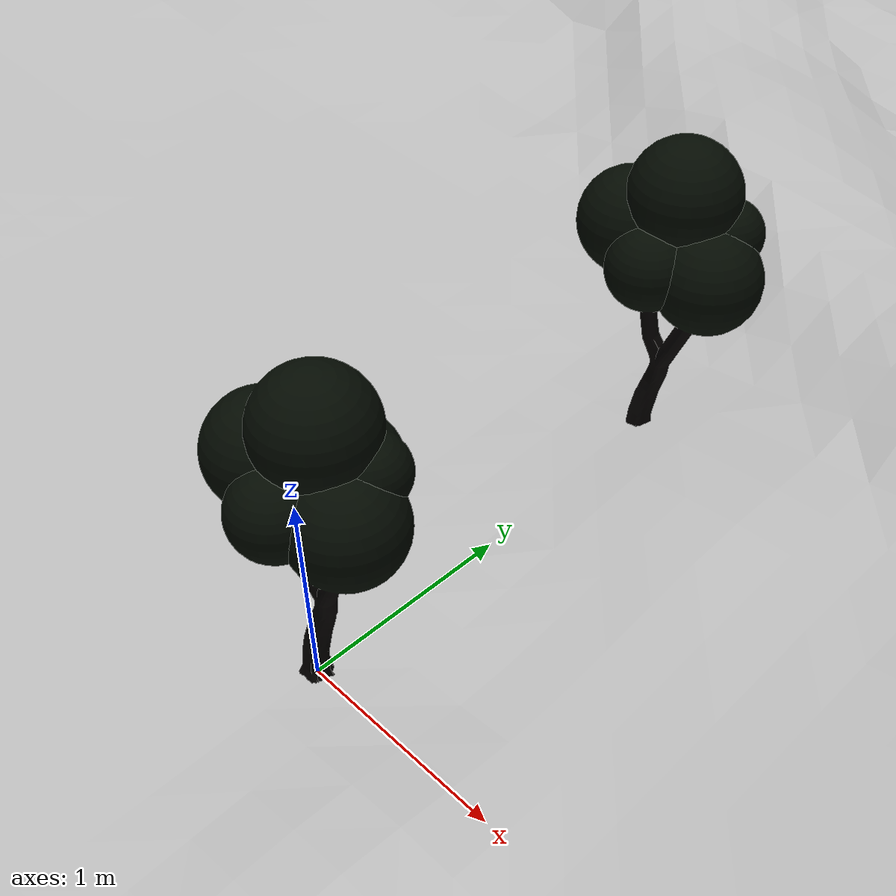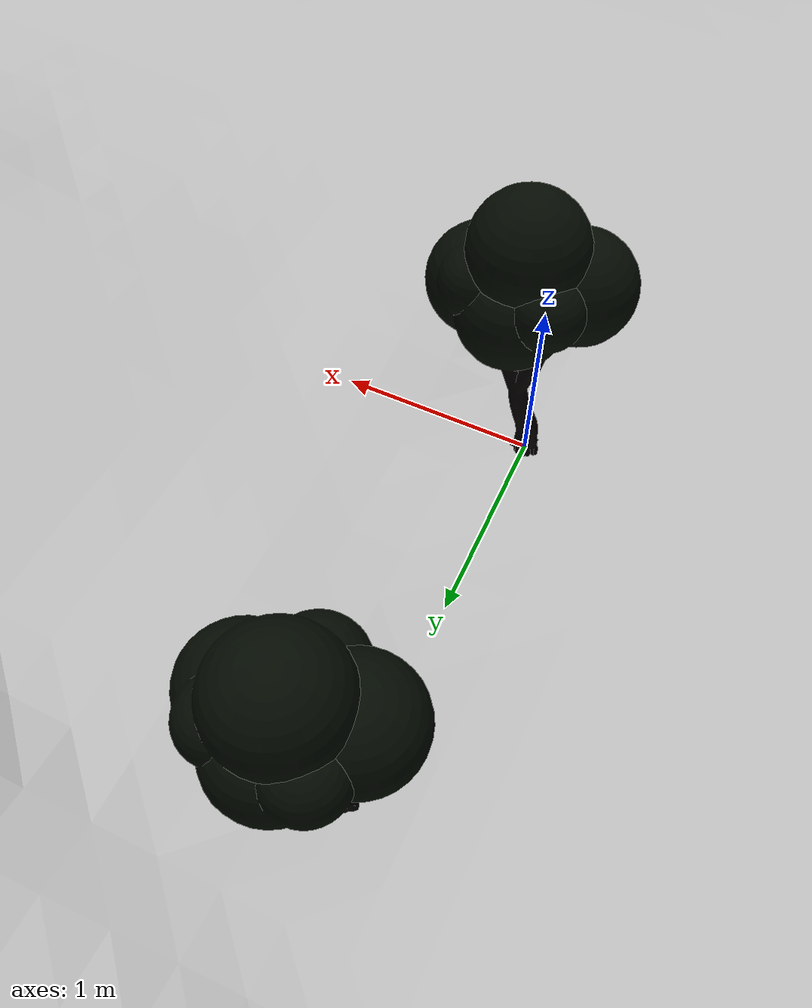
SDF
<?xml version="1.0" ?>
<sdf version="1.9">
  <world name="forest_world">
    <gravity>0 0 -9.81</gravity>
    <light type="directional" name="sun">
      <cast_shadows>true</cast_shadows>
      <pose>0 0 10 0 0 0</pose>
      <diffuse>1 1 1 1</diffuse>
      <specular>0.2 0.2 0.2 1</specular>
      <direction>-0.5 0.5 -1</direction>
    </light>
    <include>
      <uri>model://forest_env</uri>
      <name>forest_env</name>
      <pose>0 0 0 0 0 0</pose>
    </include>
    <include>
        <uri>model://tree1</uri>
        <name>tree1</name>
        <pose>0 0 0 0 0 0</pose>
    </include>
    <include>
        <uri>model://tree1</uri>
        <name>tree2</name>
        <pose>0 2 0 0 0 0</pose>
    </include>
  </world>
</sdf>

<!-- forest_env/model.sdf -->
<sdf version="1.9">
  <model name="forest_env">
    <static>true</static>
    <link name="ground_link">

      <!-- VISUAL: hilly mesh -->
      <visual name="ground_visual">
        <geometry>
          <mesh>
            <uri>model://forest_env/meshes/Environment1.dae</uri>
            <scale>15 15 15</scale>
          </mesh>
        </geometry>
      </visual>

      <!-- COLLISION: match the visual (same uri + scale) -->
      <collision name="ground_collision">
        <geometry>
          <mesh>
            <!-- use a simplified collision mesh if you have one: Environment1_col.stl -->
            <uri>model://forest_env/meshes/Environment1.dae</uri>
            <scale>15 15 15</scale>
          </mesh>
        </geometry>
        <surface>
          <contact>
            <ode>
              <kp>2e6</kp>
              <kd>1.0</kd>
              <max_vel>0.2</max_vel>
              <min_depth>0.001</min_depth>
            </ode>
          </contact>
          <friction><ode><mu>1.0</mu><mu2>1.0</mu2></ode></friction>
        </surface>
      </collision>

    </link>
  </model>
</sdf>

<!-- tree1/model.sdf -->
<sdf version="1.9">
  <model name="tree1">
    <static>true</static>
    <link name="tree_link">
      <visual name="tree_visual">
        <geometry>
          <mesh>
            <uri>model://tree1/meshes/tree_a.dae</uri>
            <scale>0.1 0.1 0.1</scale>
          </mesh>
        </geometry>
      </visual>
      <collision name="tree_collision">
        <geometry>
          <mesh>
            <uri>model://tree1/meshes/tree_a.dae</uri>
            <scale>0.1 0.1 0.1</scale>
          </mesh>
        </geometry>
      </collision>
    </link>
  </model>
</sdf>
